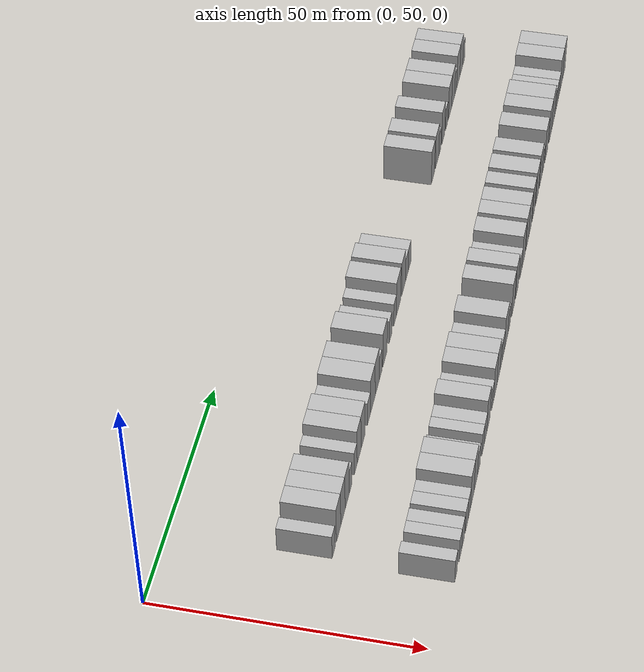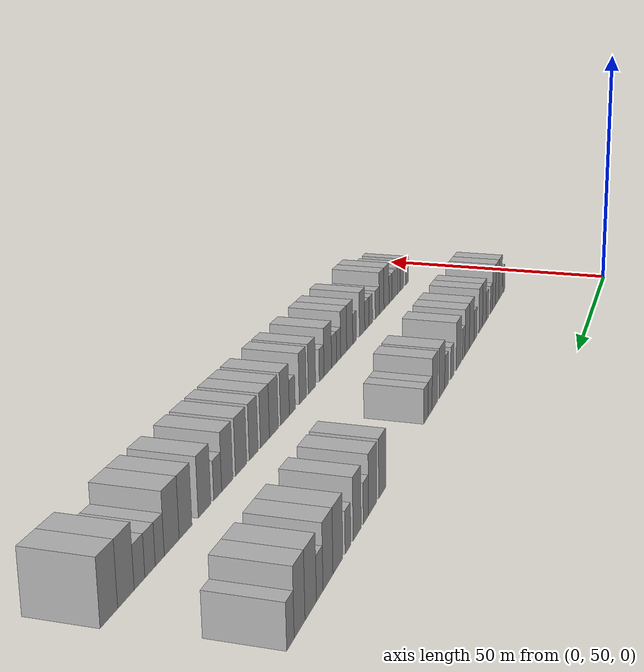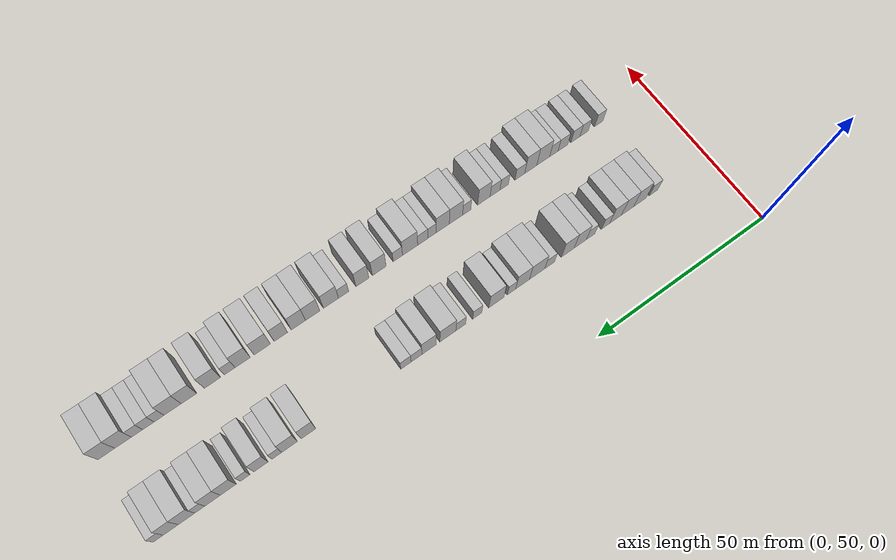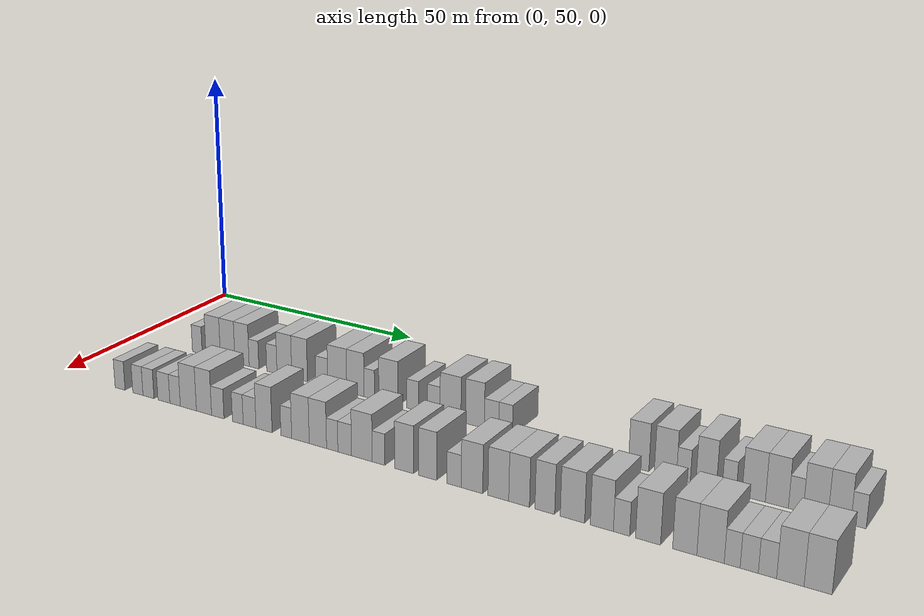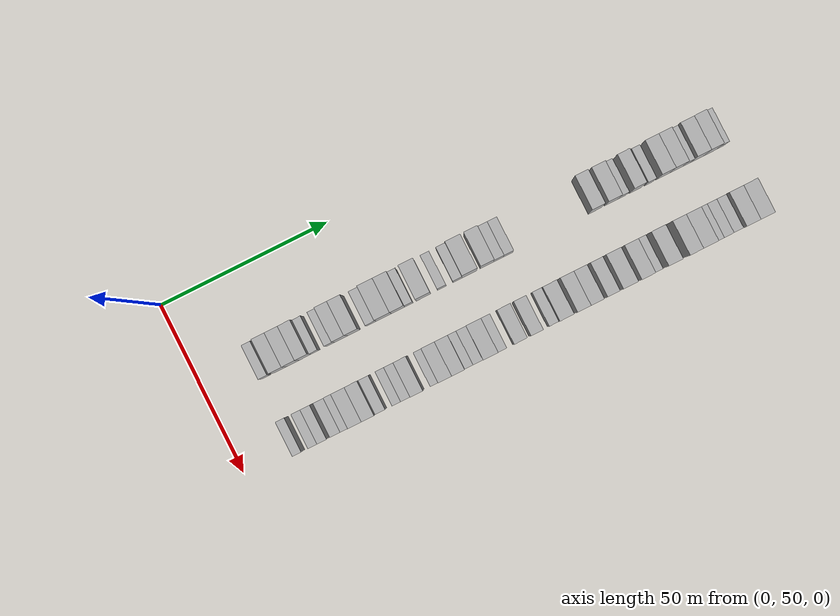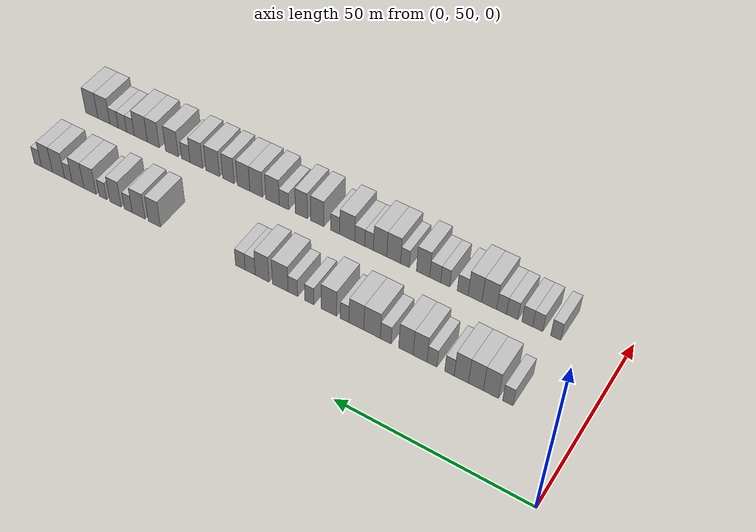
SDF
<sdf version="1.6">
 <world name="default">
  <model name="building_67">
   <static>1</static>
   <pose>25.0000 66.9653 0 0.000000 0.000000 0.000000</pose>
   <link name="link">
    <pose>0 0 3.00 0 0 0</pose>
    <collision name="collision"><geometry><box><size>10.0000 2.6101 6.0000</size></box></geometry></collision>
    <visual name="visual">
     <cast_shadows>0</cast_shadows>
     <geometry><box><size>10.0000 2.6101 6.0000</size></box></geometry>
     <material>
      <script>
       <uri>model://HANNAS_wall/materials/scripts</uri>
       <uri>model://HANNAS_wall/materials/textures</uri>
       <name>vrc/HANNAS_wall</name>
      </script>
     </material>
    </visual>
   </link>
  </model>
  <model name="building_68">
   <static>1</static>
   <pose>25.0000 71.1801 0 0.000000 0.000000 0.000000</pose>
   <link name="link">
    <pose>0 0 4.50 0 0 0</pose>
    <collision name="collision"><geometry><box><size>10.0000 3.8197 9.0000</size></box></geometry></collision>
    <visual name="visual">
     <cast_shadows>0</cast_shadows>
     <geometry><box><size>10.0000 3.8197 9.0000</size></box></geometry>
     <material>
      <script>
       <uri>model://HANNAS_wall/materials/scripts</uri>
       <uri>model://HANNAS_wall/materials/textures</uri>
       <name>vrc/HANNAS_wall</name>
      </script>
     </material>
    </visual>
   </link>
  </model>
  <model name="building_69">
   <static>1</static>
   <pose>25.0000 74.9788 0 0.000000 0.000000 0.000000</pose>
   <link name="link">
    <pose>0 0 4.50 0 0 0</pose>
    <collision name="collision"><geometry><box><size>10.0000 3.7777 9.0000</size></box></geometry></collision>
    <visual name="visual">
     <cast_shadows>0</cast_shadows>
     <geometry><box><size>10.0000 3.7777 9.0000</size></box></geometry>
     <material>
      <script>
       <uri>model://HANNAS_wall/materials/scripts</uri>
       <uri>model://HANNAS_wall/materials/textures</uri>
       <name>vrc/HANNAS_wall</name>
      </script>
     </material>
    </visual>
   </link>
  </model>
  <model name="building_70">
   <static>1</static>
   <pose>25.0000 78.6848 0 0.000000 0.000000 0.000000</pose>
   <link name="link">
    <pose>0 0 4.50 0 0 0</pose>
    <collision name="collision"><geometry><box><size>10.0000 3.6342 9.0000</size></box></geometry></collision>
    <visual name="visual">
     <cast_shadows>0</cast_shadows>
     <geometry><box><size>10.0000 3.6342 9.0000</size></box></geometry>
     <material>
      <script>
       <uri>model://HANNAS_wall/materials/scripts</uri>
       <uri>model://HANNAS_wall/materials/textures</uri>
       <name>vrc/HANNAS_wall</name>
      </script>
     </material>
    </visual>
   </link>
  </model>
  <model name="building_71">
   <static>1</static>
   <pose>25.0000 81.7325 0 0.000000 0.000000 0.000000</pose>
   <link name="link">
    <pose>0 0 3.00 0 0 0</pose>
    <collision name="collision"><geometry><box><size>10.0000 2.4613 6.0000</size></box></geometry></collision>
    <visual name="visual">
     <cast_shadows>0</cast_shadows>
     <geometry><box><size>10.0000 2.4613 6.0000</size></box></geometry>
     <material>
      <script>
       <uri>model://HANNAS_wall/materials/scripts</uri>
       <uri>model://HANNAS_wall/materials/textures</uri>
       <name>vrc/HANNAS_wall</name>
      </script>
     </material>
    </visual>
   </link>
  </model>
  <model name="building_72">
   <static>1</static>
   <pose>25.0000 86.2487 0 0.000000 0.000000 0.000000</pose>
   <link name="link">
    <pose>0 0 3.00 0 0 0</pose>
    <collision name="collision"><geometry><box><size>10.0000 2.5711 6.0000</size></box></geometry></collision>
    <visual name="visual">
     <cast_shadows>0</cast_shadows>
     <geometry><box><size>10.0000 2.5711 6.0000</size></box></geometry>
     <material>
      <script>
       <uri>model://HANNAS_wall/materials/scripts</uri>
       <uri>model://HANNAS_wall/materials/textures</uri>
       <name>vrc/HANNAS_wall</name>
      </script>
     </material>
    </visual>
   </link>
  </model>
  <model name="building_73">
   <static>1</static>
   <pose>25.0000 89.3699 0 0.000000 0.000000 0.000000</pose>
   <link name="link">
    <pose>0 0 4.50 0 0 0</pose>
    <collision name="collision"><geometry><box><size>10.0000 3.6713 9.0000</size></box></geometry></collision>
    <visual name="visual">
     <cast_shadows>0</cast_shadows>
     <geometry><box><size>10.0000 3.6713 9.0000</size></box></geometry>
     <material>
      <script>
       <uri>model://HANNAS_wall/materials/scripts</uri>
       <uri>model://HANNAS_wall/materials/textures</uri>
       <name>vrc/HANNAS_wall</name>
      </script>
     </material>
    </visual>
   </link>
  </model>
  <model name="building_74">
   <static>1</static>
   <pose>25.0000 93.1220 0 0.000000 0.000000 0.000000</pose>
   <link name="link">
    <pose>0 0 4.50 0 0 0</pose>
    <collision name="collision"><geometry><box><size>10.0000 3.8327 9.0000</size></box></geometry></collision>
    <visual name="visual">
     <cast_shadows>0</cast_shadows>
     <geometry><box><size>10.0000 3.8327 9.0000</size></box></geometry>
     <material>
      <script>
       <uri>model://HANNAS_wall/materials/scripts</uri>
       <uri>model://HANNAS_wall/materials/textures</uri>
       <name>vrc/HANNAS_wall</name>
      </script>
     </material>
    </visual>
   </link>
  </model>
  <model name="building_75">
   <static>1</static>
   <pose>25.0000 98.4886 0 0.000000 0.000000 0.000000</pose>
   <link name="link">
    <pose>0 0 3.00 0 0 0</pose>
    <collision name="collision"><geometry><box><size>10.0000 2.9004 6.0000</size></box></geometry></collision>
    <visual name="visual">
     <cast_shadows>0</cast_shadows>
     <geometry><box><size>10.0000 2.9004 6.0000</size></box></geometry>
     <material>
      <script>
       <uri>model://HANNAS_wall/materials/scripts</uri>
       <uri>model://HANNAS_wall/materials/textures</uri>
       <name>vrc/HANNAS_wall</name>
      </script>
     </material>
    </visual>
   </link>
  </model>
  <model name="building_76">
   <static>1</static>
   <pose>25.0000 102.1806 0 0.000000 0.000000 0.000000</pose>
   <link name="link">
    <pose>0 0 4.50 0 0 0</pose>
    <collision name="collision"><geometry><box><size>10.0000 4.4837 9.0000</size></box></geometry></collision>
    <visual name="visual">
     <cast_shadows>0</cast_shadows>
     <geometry><box><size>10.0000 4.4837 9.0000</size></box></geometry>
     <material>
      <script>
       <uri>model://HANNAS_wall/materials/scripts</uri>
       <uri>model://HANNAS_wall/materials/textures</uri>
       <name>vrc/HANNAS_wall</name>
      </script>
     </material>
    </visual>
   </link>
  </model>
  <model name="building_77">
   <static>1</static>
   <pose>25.0000 106.4409 0 0.000000 0.000000 0.000000</pose>
   <link name="link">
    <pose>0 0 4.50 0 0 0</pose>
    <collision name="collision"><geometry><box><size>10.0000 4.0369 9.0000</size></box></geometry></collision>
    <visual name="visual">
     <cast_shadows>0</cast_shadows>
     <geometry><box><size>10.0000 4.0369 9.0000</size></box></geometry>
     <material>
      <script>
       <uri>model://HANNAS_wall/materials/scripts</uri>
       <uri>model://HANNAS_wall/materials/textures</uri>
       <name>vrc/HANNAS_wall</name>
      </script>
     </material>
    </visual>
   </link>
  </model>
  <model name="building_78">
   <static>1</static>
   <pose>25.0000 109.6628 0 0.000000 0.000000 0.000000</pose>
   <link name="link">
    <pose>0 0 3.00 0 0 0</pose>
    <collision name="collision"><geometry><box><size>10.0000 2.4070 6.0000</size></box></geometry></collision>
    <visual name="visual">
     <cast_shadows>0</cast_shadows>
     <geometry><box><size>10.0000 2.4070 6.0000</size></box></geometry>
     <material>
      <script>
       <uri>model://HANNAS_wall/materials/scripts</uri>
       <uri>model://HANNAS_wall/materials/textures</uri>
       <name>vrc/HANNAS_wall</name>
      </script>
     </material>
    </visual>
   </link>
  </model>
  <model name="building_79">
   <static>1</static>
   <pose>25.0000 114.0289 0 0.000000 0.000000 0.000000</pose>
   <link name="link">
    <pose>0 0 4.50 0 0 0</pose>
    <collision name="collision"><geometry><box><size>10.0000 4.3251 9.0000</size></box></geometry></collision>
    <visual name="visual">
     <cast_shadows>0</cast_shadows>
     <geometry><box><size>10.0000 4.3251 9.0000</size></box></geometry>
     <material>
      <script>
       <uri>model://HANNAS_wall/materials/scripts</uri>
       <uri>model://HANNAS_wall/materials/textures</uri>
       <name>vrc/HANNAS_wall</name>
      </script>
     </material>
    </visual>
   </link>
  </model>
  <model name="building_80">
   <static>1</static>
   <pose>25.0000 119.4891 0 0.000000 0.000000 0.000000</pose>
   <link name="link">
    <pose>0 0 3.00 0 0 0</pose>
    <collision name="collision"><geometry><box><size>10.0000 2.5953 6.0000</size></box></geometry></collision>
    <visual name="visual">
     <cast_shadows>0</cast_shadows>
     <geometry><box><size>10.0000 2.5953 6.0000</size></box></geometry>
     <material>
      <script>
       <uri>model://HANNAS_wall/materials/scripts</uri>
       <uri>model://HANNAS_wall/materials/textures</uri>
       <name>vrc/HANNAS_wall</name>
      </script>
     </material>
    </visual>
   </link>
  </model>
  <model name="building_81">
   <static>1</static>
   <pose>25.0000 124.1591 0 0.000000 0.000000 0.000000</pose>
   <link name="link">
    <pose>0 0 3.00 0 0 0</pose>
    <collision name="collision"><geometry><box><size>10.0000 2.7448 6.0000</size></box></geometry></collision>
    <visual name="visual">
     <cast_shadows>0</cast_shadows>
     <geometry><box><size>10.0000 2.7448 6.0000</size></box></geometry>
     <material>
      <script>
       <uri>model://HANNAS_wall/materials/scripts</uri>
       <uri>model://HANNAS_wall/materials/textures</uri>
       <name>vrc/HANNAS_wall</name>
      </script>
     </material>
    </visual>
   </link>
  </model>
  <model name="building_82">
   <static>1</static>
   <pose>25.0000 127.7744 0 0.000000 0.000000 0.000000</pose>
   <link name="link">
    <pose>0 0 4.50 0 0 0</pose>
    <collision name="collision"><geometry><box><size>10.0000 4.4858 9.0000</size></box></geometry></collision>
    <visual name="visual">
     <cast_shadows>0</cast_shadows>
     <geometry><box><size>10.0000 4.4858 9.0000</size></box></geometry>
     <material>
      <script>
       <uri>model://HANNAS_wall/materials/scripts</uri>
       <uri>model://HANNAS_wall/materials/textures</uri>
       <name>vrc/HANNAS_wall</name>
      </script>
     </material>
    </visual>
   </link>
  </model>
  <model name="building_83">
   <static>1</static>
   <pose>25.0000 133.0102 0 0.000000 0.000000 0.000000</pose>
   <link name="link">
    <pose>0 0 4.50 0 0 0</pose>
    <collision name="collision"><geometry><box><size>10.0000 3.9858 9.0000</size></box></geometry></collision>
    <visual name="visual">
     <cast_shadows>0</cast_shadows>
     <geometry><box><size>10.0000 3.9858 9.0000</size></box></geometry>
     <material>
      <script>
       <uri>model://HANNAS_wall/materials/scripts</uri>
       <uri>model://HANNAS_wall/materials/textures</uri>
       <name>vrc/HANNAS_wall</name>
      </script>
     </material>
    </visual>
   </link>
  </model>
  <model name="building_84">
   <static>1</static>
   <pose>25.0000 136.4877 0 0.000000 0.000000 0.000000</pose>
   <link name="link">
    <pose>0 0 3.00 0 0 0</pose>
    <collision name="collision"><geometry><box><size>10.0000 2.9690 6.0000</size></box></geometry></collision>
    <visual name="visual">
     <cast_shadows>0</cast_shadows>
     <geometry><box><size>10.0000 2.9690 6.0000</size></box></geometry>
     <material>
      <script>
       <uri>model://HANNAS_wall/materials/scripts</uri>
       <uri>model://HANNAS_wall/materials/textures</uri>
       <name>vrc/HANNAS_wall</name>
      </script>
     </material>
    </visual>
   </link>
  </model>
  <model name="building_85">
   <static>1</static>
   <pose>25.0000 139.3937 0 0.000000 0.000000 0.000000</pose>
   <link name="link">
    <pose>0 0 3.00 0 0 0</pose>
    <collision name="collision"><geometry><box><size>10.0000 2.8429 6.0000</size></box></geometry></collision>
    <visual name="visual">
     <cast_shadows>0</cast_shadows>
     <geometry><box><size>10.0000 2.8429 6.0000</size></box></geometry>
     <material>
      <script>
       <uri>model://HANNAS_wall/materials/scripts</uri>
       <uri>model://HANNAS_wall/materials/textures</uri>
       <name>vrc/HANNAS_wall</name>
      </script>
     </material>
    </visual>
   </link>
  </model>
  <model name="building_86">
   <static>1</static>
   <pose>25.0000 165.5447 0 0.000000 0.000000 0.000000</pose>
   <link name="link">
    <pose>0 0 4.50 0 0 0</pose>
    <collision name="collision"><geometry><box><size>10.0000 3.8197 9.0000</size></box></geometry></collision>
    <visual name="visual">
     <cast_shadows>0</cast_shadows>
     <geometry><box><size>10.0000 3.8197 9.0000</size></box></geometry>
     <material>
      <script>
       <uri>model://HANNAS_wall/materials/scripts</uri>
       <uri>model://HANNAS_wall/materials/textures</uri>
       <name>vrc/HANNAS_wall</name>
      </script>
     </material>
    </visual>
   </link>
  </model>
  <model name="building_87">
   <static>1</static>
   <pose>25.0000 170.4842 0 0.000000 0.000000 0.000000</pose>
   <link name="link">
    <pose>0 0 4.50 0 0 0</pose>
    <collision name="collision"><geometry><box><size>10.0000 4.0594 9.0000</size></box></geometry></collision>
    <visual name="visual">
     <cast_shadows>0</cast_shadows>
     <geometry><box><size>10.0000 4.0594 9.0000</size></box></geometry>
     <material>
      <script>
       <uri>model://HANNAS_wall/materials/scripts</uri>
       <uri>model://HANNAS_wall/materials/textures</uri>
       <name>vrc/HANNAS_wall</name>
      </script>
     </material>
    </visual>
   </link>
  </model>
  <model name="building_88">
   <static>1</static>
   <pose>25.0000 173.7690 0 0.000000 0.000000 0.000000</pose>
   <link name="link">
    <pose>0 0 3.00 0 0 0</pose>
    <collision name="collision"><geometry><box><size>10.0000 2.5102 6.0000</size></box></geometry></collision>
    <visual name="visual">
     <cast_shadows>0</cast_shadows>
     <geometry><box><size>10.0000 2.5102 6.0000</size></box></geometry>
     <material>
      <script>
       <uri>model://HANNAS_wall/materials/scripts</uri>
       <uri>model://HANNAS_wall/materials/textures</uri>
       <name>vrc/HANNAS_wall</name>
      </script>
     </material>
    </visual>
   </link>
  </model>
  <model name="building_89">
   <static>1</static>
   <pose>25.0000 177.8482 0 0.000000 0.000000 0.000000</pose>
   <link name="link">
    <pose>0 0 4.50 0 0 0</pose>
    <collision name="collision"><geometry><box><size>10.0000 3.6481 9.0000</size></box></geometry></collision>
    <visual name="visual">
     <cast_shadows>0</cast_shadows>
     <geometry><box><size>10.0000 3.6481 9.0000</size></box></geometry>
     <material>
      <script>
       <uri>model://HANNAS_wall/materials/scripts</uri>
       <uri>model://HANNAS_wall/materials/textures</uri>
       <name>vrc/HANNAS_wall</name>
      </script>
     </material>
    </visual>
   </link>
  </model>
  <model name="building_90">
   <static>1</static>
   <pose>25.0000 181.9054 0 0.000000 0.000000 0.000000</pose>
   <link name="link">
    <pose>0 0 3.00 0 0 0</pose>
    <collision name="collision"><geometry><box><size>10.0000 2.4664 6.0000</size></box></geometry></collision>
    <visual name="visual">
     <cast_shadows>0</cast_shadows>
     <geometry><box><size>10.0000 2.4664 6.0000</size></box></geometry>
     <material>
      <script>
       <uri>model://HANNAS_wall/materials/scripts</uri>
       <uri>model://HANNAS_wall/materials/textures</uri>
       <name>vrc/HANNAS_wall</name>
      </script>
     </material>
    </visual>
   </link>
  </model>
  <model name="building_91">
   <static>1</static>
   <pose>25.0000 186.1505 0 0.000000 0.000000 0.000000</pose>
   <link name="link">
    <pose>0 0 4.50 0 0 0</pose>
    <collision name="collision"><geometry><box><size>10.0000 4.0237 9.0000</size></box></geometry></collision>
    <visual name="visual">
     <cast_shadows>0</cast_shadows>
     <geometry><box><size>10.0000 4.0237 9.0000</size></box></geometry>
     <material>
      <script>
       <uri>model://HANNAS_wall/materials/scripts</uri>
       <uri>model://HANNAS_wall/materials/textures</uri>
       <name>vrc/HANNAS_wall</name>
      </script>
     </material>
    </visual>
   </link>
  </model>
  <model name="building_92">
   <static>1</static>
   <pose>25.0000 190.1076 0 0.000000 0.000000 0.000000</pose>
   <link name="link">
    <pose>0 0 4.50 0 0 0</pose>
    <collision name="collision"><geometry><box><size>10.0000 3.8905 9.0000</size></box></geometry></collision>
    <visual name="visual">
     <cast_shadows>0</cast_shadows>
     <geometry><box><size>10.0000 3.8905 9.0000</size></box></geometry>
     <material>
      <script>
       <uri>model://HANNAS_wall/materials/scripts</uri>
       <uri>model://HANNAS_wall/materials/textures</uri>
       <name>vrc/HANNAS_wall</name>
      </script>
     </material>
    </visual>
   </link>
  </model>
  <model name="building_93">
   <static>1</static>
   <pose>25.0000 193.2844 0 0.000000 0.000000 0.000000</pose>
   <link name="link">
    <pose>0 0 3.00 0 0 0</pose>
    <collision name="collision"><geometry><box><size>10.0000 2.4630 6.0000</size></box></geometry></collision>
    <visual name="visual">
     <cast_shadows>0</cast_shadows>
     <geometry><box><size>10.0000 2.4630 6.0000</size></box></geometry>
     <material>
      <script>
       <uri>model://HANNAS_wall/materials/scripts</uri>
       <uri>model://HANNAS_wall/materials/textures</uri>
       <name>vrc/HANNAS_wall</name>
      </script>
     </material>
    </visual>
   </link>
  </model>
  <model name="building_94">
   <static>1</static>
   <pose>25.0000 196.5520 0 0.000000 0.000000 0.000000</pose>
   <link name="link">
    <pose>0 0 4.50 0 0 0</pose>
    <collision name="collision"><geometry><box><size>10.0000 4.0721 9.0000</size></box></geometry></collision>
    <visual name="visual">
     <cast_shadows>0</cast_shadows>
     <geometry><box><size>10.0000 4.0721 9.0000</size></box></geometry>
     <material>
      <script>
       <uri>model://HANNAS_wall/materials/scripts</uri>
       <uri>model://HANNAS_wall/materials/textures</uri>
       <name>vrc/HANNAS_wall</name>
      </script>
     </material>
    </visual>
   </link>
  </model>
  <model name="building_95">
   <static>1</static>
   <pose>25.0000 200.4323 0 0.000000 0.000000 0.000000</pose>
   <link name="link">
    <pose>0 0 4.50 0 0 0</pose>
    <collision name="collision"><geometry><box><size>10.0000 3.6886 9.0000</size></box></geometry></collision>
    <visual name="visual">
     <cast_shadows>0</cast_shadows>
     <geometry><box><size>10.0000 3.6886 9.0000</size></box></geometry>
     <material>
      <script>
       <uri>model://HANNAS_wall/materials/scripts</uri>
       <uri>model://HANNAS_wall/materials/textures</uri>
       <name>vrc/HANNAS_wall</name>
      </script>
     </material>
    </visual>
   </link>
  </model>
  <model name="building_96">
   <static>1</static>
   <pose>25.0000 203.5031 0 0.000000 0.000000 0.000000</pose>
   <link name="link">
    <pose>0 0 3.00 0 0 0</pose>
    <collision name="collision"><geometry><box><size>10.0000 2.4531 6.0000</size></box></geometry></collision>
    <visual name="visual">
     <cast_shadows>0</cast_shadows>
     <geometry><box><size>10.0000 2.4531 6.0000</size></box></geometry>
     <material>
      <script>
       <uri>model://HANNAS_wall/materials/scripts</uri>
       <uri>model://HANNAS_wall/materials/textures</uri>
       <name>vrc/HANNAS_wall</name>
      </script>
     </material>
    </visual>
   </link>
  </model>
  <model name="building_163">
   <static>1</static>
   <pose>47.0000 66.0049 0 0.000000 0.000000 0.000000</pose>
   <link name="link">
    <pose>0 0 3.00 0 0 0</pose>
    <collision name="collision"><geometry><box><size>10.0000 2.5942 6.0000</size></box></geometry></collision>
    <visual name="visual">
     <cast_shadows>0</cast_shadows>
     <geometry><box><size>10.0000 2.5942 6.0000</size></box></geometry>
     <material>
      <script>
       <uri>model://HANNAS_wall/materials/scripts</uri>
       <uri>model://HANNAS_wall/materials/textures</uri>
       <name>vrc/HANNAS_wall</name>
      </script>
     </material>
    </visual>
   </link>
  </model>
  <model name="building_164">
   <static>1</static>
   <pose>47.0000 70.6118 0 0.000000 0.000000 0.000000</pose>
   <link name="link">
    <pose>0 0 3.00 0 0 0</pose>
    <collision name="collision"><geometry><box><size>10.0000 2.6198 6.0000</size></box></geometry></collision>
    <visual name="visual">
     <cast_shadows>0</cast_shadows>
     <geometry><box><size>10.0000 2.6198 6.0000</size></box></geometry>
     <material>
      <script>
       <uri>model://HANNAS_wall/materials/scripts</uri>
       <uri>model://HANNAS_wall/materials/textures</uri>
       <name>vrc/HANNAS_wall</name>
      </script>
     </material>
    </visual>
   </link>
  </model>
  <model name="building_165">
   <static>1</static>
   <pose>47.0000 73.3209 0 0.000000 0.000000 0.000000</pose>
   <link name="link">
    <pose>0 0 3.00 0 0 0</pose>
    <collision name="collision"><geometry><box><size>10.0000 2.7983 6.0000</size></box></geometry></collision>
    <visual name="visual">
     <cast_shadows>0</cast_shadows>
     <geometry><box><size>10.0000 2.7983 6.0000</size></box></geometry>
     <material>
      <script>
       <uri>model://HANNAS_wall/materials/scripts</uri>
       <uri>model://HANNAS_wall/materials/textures</uri>
       <name>vrc/HANNAS_wall</name>
      </script>
     </material>
    </visual>
   </link>
  </model>
  <model name="building_166">
   <static>1</static>
   <pose>47.0000 77.2178 0 0.000000 0.000000 0.000000</pose>
   <link name="link">
    <pose>0 0 3.00 0 0 0</pose>
    <collision name="collision"><geometry><box><size>10.0000 2.9956 6.0000</size></box></geometry></collision>
    <visual name="visual">
     <cast_shadows>0</cast_shadows>
     <geometry><box><size>10.0000 2.9956 6.0000</size></box></geometry>
     <material>
      <script>
       <uri>model://HANNAS_wall/materials/scripts</uri>
       <uri>model://HANNAS_wall/materials/textures</uri>
       <name>vrc/HANNAS_wall</name>
      </script>
     </material>
    </visual>
   </link>
  </model>
  <model name="building_167">
   <static>1</static>
   <pose>47.0000 80.0102 0 0.000000 0.000000 0.000000</pose>
   <link name="link">
    <pose>0 0 3.00 0 0 0</pose>
    <collision name="collision"><geometry><box><size>10.0000 2.5893 6.0000</size></box></geometry></collision>
    <visual name="visual">
     <cast_shadows>0</cast_shadows>
     <geometry><box><size>10.0000 2.5893 6.0000</size></box></geometry>
     <material>
      <script>
       <uri>model://HANNAS_wall/materials/scripts</uri>
       <uri>model://HANNAS_wall/materials/textures</uri>
       <name>vrc/HANNAS_wall</name>
      </script>
     </material>
    </visual>
   </link>
  </model>
  <model name="building_168">
   <static>1</static>
   <pose>47.0000 83.2765 0 0.000000 0.000000 0.000000</pose>
   <link name="link">
    <pose>0 0 4.50 0 0 0</pose>
    <collision name="collision"><geometry><box><size>10.0000 3.9433 9.0000</size></box></geometry></collision>
    <visual name="visual">
     <cast_shadows>0</cast_shadows>
     <geometry><box><size>10.0000 3.9433 9.0000</size></box></geometry>
     <material>
      <script>
       <uri>model://HANNAS_wall/materials/scripts</uri>
       <uri>model://HANNAS_wall/materials/textures</uri>
       <name>vrc/HANNAS_wall</name>
      </script>
     </material>
    </visual>
   </link>
  </model>
  <model name="building_169">
   <static>1</static>
   <pose>47.0000 87.0861 0 0.000000 0.000000 0.000000</pose>
   <link name="link">
    <pose>0 0 4.50 0 0 0</pose>
    <collision name="collision"><geometry><box><size>10.0000 3.6759 9.0000</size></box></geometry></collision>
    <visual name="visual">
     <cast_shadows>0</cast_shadows>
     <geometry><box><size>10.0000 3.6759 9.0000</size></box></geometry>
     <material>
      <script>
       <uri>model://HANNAS_wall/materials/scripts</uri>
       <uri>model://HANNAS_wall/materials/textures</uri>
       <name>vrc/HANNAS_wall</name>
      </script>
     </material>
    </visual>
   </link>
  </model>
  <model name="building_170">
   <static>1</static>
   <pose>47.0000 90.4068 0 0.000000 0.000000 0.000000</pose>
   <link name="link">
    <pose>0 0 3.00 0 0 0</pose>
    <collision name="collision"><geometry><box><size>10.0000 2.9654 6.0000</size></box></geometry></collision>
    <visual name="visual">
     <cast_shadows>0</cast_shadows>
     <geometry><box><size>10.0000 2.9654 6.0000</size></box></geometry>
     <material>
      <script>
       <uri>model://HANNAS_wall/materials/scripts</uri>
       <uri>model://HANNAS_wall/materials/textures</uri>
       <name>vrc/HANNAS_wall</name>
      </script>
     </material>
    </visual>
   </link>
  </model>
  <model name="building_171">
   <static>1</static>
   <pose>47.0000 95.1521 0 0.000000 0.000000 0.000000</pose>
   <link name="link">
    <pose>0 0 3.00 0 0 0</pose>
    <collision name="collision"><geometry><box><size>10.0000 2.5252 6.0000</size></box></geometry></collision>
    <visual name="visual">
     <cast_shadows>0</cast_shadows>
     <geometry><box><size>10.0000 2.5252 6.0000</size></box></geometry>
     <material>
      <script>
       <uri>model://HANNAS_wall/materials/scripts</uri>
       <uri>model://HANNAS_wall/materials/textures</uri>
       <name>vrc/HANNAS_wall</name>
      </script>
     </material>
    </visual>
   </link>
  </model>
  <model name="building_172">
   <static>1</static>
   <pose>47.0000 97.9004 0 0.000000 0.000000 0.000000</pose>
   <link name="link">
    <pose>0 0 3.00 0 0 0</pose>
    <collision name="collision"><geometry><box><size>10.0000 2.9713 6.0000</size></box></geometry></collision>
    <visual name="visual">
     <cast_shadows>0</cast_shadows>
     <geometry><box><size>10.0000 2.9713 6.0000</size></box></geometry>
     <material>
      <script>
       <uri>model://HANNAS_wall/materials/scripts</uri>
       <uri>model://HANNAS_wall/materials/textures</uri>
       <name>vrc/HANNAS_wall</name>
      </script>
     </material>
    </visual>
   </link>
  </model>
  <model name="building_173">
   <static>1</static>
   <pose>47.0000 101.2339 0 0.000000 0.000000 0.000000</pose>
   <link name="link">
    <pose>0 0 4.50 0 0 0</pose>
    <collision name="collision"><geometry><box><size>10.0000 3.6959 9.0000</size></box></geometry></collision>
    <visual name="visual">
     <cast_shadows>0</cast_shadows>
     <geometry><box><size>10.0000 3.6959 9.0000</size></box></geometry>
     <material>
      <script>
       <uri>model://HANNAS_wall/materials/scripts</uri>
       <uri>model://HANNAS_wall/materials/textures</uri>
       <name>vrc/HANNAS_wall</name>
      </script>
     </material>
    </visual>
   </link>
  </model>
  <model name="building_174">
   <static>1</static>
   <pose>47.0000 106.2950 0 0.000000 0.000000 0.000000</pose>
   <link name="link">
    <pose>0 0 3.00 0 0 0</pose>
    <collision name="collision"><geometry><box><size>10.0000 2.4263 6.0000</size></box></geometry></collision>
    <visual name="visual">
     <cast_shadows>0</cast_shadows>
     <geometry><box><size>10.0000 2.4263 6.0000</size></box></geometry>
     <material>
      <script>
       <uri>model://HANNAS_wall/materials/scripts</uri>
       <uri>model://HANNAS_wall/materials/textures</uri>
       <name>vrc/HANNAS_wall</name>
      </script>
     </material>
    </visual>
   </link>
  </model>
  <model name="building_175">
   <static>1</static>
   <pose>47.0000 109.4608 0 0.000000 0.000000 0.000000</pose>
   <link name="link">
    <pose>0 0 4.50 0 0 0</pose>
    <collision name="collision"><geometry><box><size>10.0000 3.9053 9.0000</size></box></geometry></collision>
    <visual name="visual">
     <cast_shadows>0</cast_shadows>
     <geometry><box><size>10.0000 3.9053 9.0000</size></box></geometry>
     <material>
      <script>
       <uri>model://HANNAS_wall/materials/scripts</uri>
       <uri>model://HANNAS_wall/materials/textures</uri>
       <name>vrc/HANNAS_wall</name>
      </script>
     </material>
    </visual>
   </link>
  </model>
  <model name="building_176">
   <static>1</static>
   <pose>47.0000 113.3125 0 0.000000 0.000000 0.000000</pose>
   <link name="link">
    <pose>0 0 4.50 0 0 0</pose>
    <collision name="collision"><geometry><box><size>10.0000 3.7982 9.0000</size></box></geometry></collision>
    <visual name="visual">
     <cast_shadows>0</cast_shadows>
     <geometry><box><size>10.0000 3.7982 9.0000</size></box></geometry>
     <material>
      <script>
       <uri>model://HANNAS_wall/materials/scripts</uri>
       <uri>model://HANNAS_wall/materials/textures</uri>
       <name>vrc/HANNAS_wall</name>
      </script>
     </material>
    </visual>
   </link>
  </model>
  <model name="building_177">
   <static>1</static>
   <pose>47.0000 116.4357 0 0.000000 0.000000 0.000000</pose>
   <link name="link">
    <pose>0 0 3.00 0 0 0</pose>
    <collision name="collision"><geometry><box><size>10.0000 2.4482 6.0000</size></box></geometry></collision>
    <visual name="visual">
     <cast_shadows>0</cast_shadows>
     <geometry><box><size>10.0000 2.4482 6.0000</size></box></geometry>
     <material>
      <script>
       <uri>model://HANNAS_wall/materials/scripts</uri>
       <uri>model://HANNAS_wall/materials/textures</uri>
       <name>vrc/HANNAS_wall</name>
      </script>
     </material>
    </visual>
   </link>
  </model>
  <model name="building_178">
   <static>1</static>
   <pose>47.0000 119.1243 0 0.000000 0.000000 0.000000</pose>
   <link name="link">
    <pose>0 0 3.00 0 0 0</pose>
    <collision name="collision"><geometry><box><size>10.0000 2.9291 6.0000</size></box></geometry></collision>
    <visual name="visual">
     <cast_shadows>0</cast_shadows>
     <geometry><box><size>10.0000 2.9291 6.0000</size></box></geometry>
     <material>
      <script>
       <uri>model://HANNAS_wall/materials/scripts</uri>
       <uri>model://HANNAS_wall/materials/textures</uri>
       <name>vrc/HANNAS_wall</name>
      </script>
     </material>
    </visual>
   </link>
  </model>
  <model name="building_179">
   <static>1</static>
   <pose>47.0000 122.7681 0 0.000000 0.000000 0.000000</pose>
   <link name="link">
    <pose>0 0 4.50 0 0 0</pose>
    <collision name="collision"><geometry><box><size>10.0000 4.3585 9.0000</size></box></geometry></collision>
    <visual name="visual">
     <cast_shadows>0</cast_shadows>
     <geometry><box><size>10.0000 4.3585 9.0000</size></box></geometry>
     <material>
      <script>
       <uri>model://HANNAS_wall/materials/scripts</uri>
       <uri>model://HANNAS_wall/materials/textures</uri>
       <name>vrc/HANNAS_wall</name>
      </script>
     </material>
    </visual>
   </link>
  </model>
  <model name="building_180">
   <static>1</static>
   <pose>47.0000 126.2729 0 0.000000 0.000000 0.000000</pose>
   <link name="link">
    <pose>0 0 3.00 0 0 0</pose>
    <collision name="collision"><geometry><box><size>10.0000 2.6511 6.0000</size></box></geometry></collision>
    <visual name="visual">
     <cast_shadows>0</cast_shadows>
     <geometry><box><size>10.0000 2.6511 6.0000</size></box></geometry>
     <material>
      <script>
       <uri>model://HANNAS_wall/materials/scripts</uri>
       <uri>model://HANNAS_wall/materials/textures</uri>
       <name>vrc/HANNAS_wall</name>
      </script>
     </material>
    </visual>
   </link>
  </model>
  <model name="building_181">
   <static>1</static>
   <pose>47.0000 131.5364 0 0.000000 0.000000 0.000000</pose>
   <link name="link">
    <pose>0 0 4.50 0 0 0</pose>
    <collision name="collision"><geometry><box><size>10.0000 3.8757 9.0000</size></box></geometry></collision>
    <visual name="visual">
     <cast_shadows>0</cast_shadows>
     <geometry><box><size>10.0000 3.8757 9.0000</size></box></geometry>
     <material>
      <script>
       <uri>model://HANNAS_wall/materials/scripts</uri>
       <uri>model://HANNAS_wall/materials/textures</uri>
       <name>vrc/HANNAS_wall</name>
      </script>
     </material>
    </visual>
   </link>
  </model>
  <model name="building_182">
   <static>1</static>
   <pose>47.0000 136.2796 0 0.000000 0.000000 0.000000</pose>
   <link name="link">
    <pose>0 0 4.50 0 0 0</pose>
    <collision name="collision"><geometry><box><size>10.0000 3.6107 9.0000</size></box></geometry></collision>
    <visual name="visual">
     <cast_shadows>0</cast_shadows>
     <geometry><box><size>10.0000 3.6107 9.0000</size></box></geometry>
     <material>
      <script>
       <uri>model://HANNAS_wall/materials/scripts</uri>
       <uri>model://HANNAS_wall/materials/textures</uri>
       <name>vrc/HANNAS_wall</name>
      </script>
     </material>
    </visual>
   </link>
  </model>
  <model name="building_183">
   <static>1</static>
   <pose>47.0000 141.5053 0 0.000000 0.000000 0.000000</pose>
   <link name="link">
    <pose>0 0 3.00 0 0 0</pose>
    <collision name="collision"><geometry><box><size>10.0000 2.8407 6.0000</size></box></geometry></collision>
    <visual name="visual">
     <cast_shadows>0</cast_shadows>
     <geometry><box><size>10.0000 2.8407 6.0000</size></box></geometry>
     <material>
      <script>
       <uri>model://HANNAS_wall/materials/scripts</uri>
       <uri>model://HANNAS_wall/materials/textures</uri>
       <name>vrc/HANNAS_wall</name>
      </script>
     </material>
    </visual>
   </link>
  </model>
  <model name="building_184">
   <static>1</static>
   <pose>47.0000 145.0018 0 0.000000 0.000000 0.000000</pose>
   <link name="link">
    <pose>0 0 4.50 0 0 0</pose>
    <collision name="collision"><geometry><box><size>10.0000 4.1524 9.0000</size></box></geometry></collision>
    <visual name="visual">
     <cast_shadows>0</cast_shadows>
     <geometry><box><size>10.0000 4.1524 9.0000</size></box></geometry>
     <material>
      <script>
       <uri>model://HANNAS_wall/materials/scripts</uri>
       <uri>model://HANNAS_wall/materials/textures</uri>
       <name>vrc/HANNAS_wall</name>
      </script>
     </material>
    </visual>
   </link>
  </model>
  <model name="building_185">
   <static>1</static>
   <pose>47.0000 150.0416 0 0.000000 0.000000 0.000000</pose>
   <link name="link">
    <pose>0 0 4.50 0 0 0</pose>
    <collision name="collision"><geometry><box><size>10.0000 3.9272 9.0000</size></box></geometry></collision>
    <visual name="visual">
     <cast_shadows>0</cast_shadows>
     <geometry><box><size>10.0000 3.9272 9.0000</size></box></geometry>
     <material>
      <script>
       <uri>model://HANNAS_wall/materials/scripts</uri>
       <uri>model://HANNAS_wall/materials/textures</uri>
       <name>vrc/HANNAS_wall</name>
      </script>
     </material>
    </visual>
   </link>
  </model>
  <model name="building_186">
   <static>1</static>
   <pose>47.0000 153.9369 0 0.000000 0.000000 0.000000</pose>
   <link name="link">
    <pose>0 0 4.50 0 0 0</pose>
    <collision name="collision"><geometry><box><size>10.0000 3.8634 9.0000</size></box></geometry></collision>
    <visual name="visual">
     <cast_shadows>0</cast_shadows>
     <geometry><box><size>10.0000 3.8634 9.0000</size></box></geometry>
     <material>
      <script>
       <uri>model://HANNAS_wall/materials/scripts</uri>
       <uri>model://HANNAS_wall/materials/textures</uri>
       <name>vrc/HANNAS_wall</name>
      </script>
     </material>
    </visual>
   </link>
  </model>
  <model name="building_187">
   <static>1</static>
   <pose>47.0000 158.6719 0 0.000000 0.000000 0.000000</pose>
   <link name="link">
    <pose>0 0 4.50 0 0 0</pose>
    <collision name="collision"><geometry><box><size>10.0000 3.6064 9.0000</size></box></geometry></collision>
    <visual name="visual">
     <cast_shadows>0</cast_shadows>
     <geometry><box><size>10.0000 3.6064 9.0000</size></box></geometry>
     <material>
      <script>
       <uri>model://HANNAS_wall/materials/scripts</uri>
       <uri>model://HANNAS_wall/materials/textures</uri>
       <name>vrc/HANNAS_wall</name>
      </script>
     </material>
    </visual>
   </link>
  </model>
  <model name="building_188">
   <static>1</static>
   <pose>47.0000 163.6561 0 0.000000 0.000000 0.000000</pose>
   <link name="link">
    <pose>0 0 4.50 0 0 0</pose>
    <collision name="collision"><geometry><box><size>10.0000 4.3619 9.0000</size></box></geometry></collision>
    <visual name="visual">
     <cast_shadows>0</cast_shadows>
     <geometry><box><size>10.0000 4.3619 9.0000</size></box></geometry>
     <material>
      <script>
       <uri>model://HANNAS_wall/materials/scripts</uri>
       <uri>model://HANNAS_wall/materials/textures</uri>
       <name>vrc/HANNAS_wall</name>
      </script>
     </material>
    </visual>
   </link>
  </model>
  <model name="building_189">
   <static>1</static>
   <pose>47.0000 168.8526 0 0.000000 0.000000 0.000000</pose>
   <link name="link">
    <pose>0 0 4.50 0 0 0</pose>
    <collision name="collision"><geometry><box><size>10.0000 4.0311 9.0000</size></box></geometry></collision>
    <visual name="visual">
     <cast_shadows>0</cast_shadows>
     <geometry><box><size>10.0000 4.0311 9.0000</size></box></geometry>
     <material>
      <script>
       <uri>model://HANNAS_wall/materials/scripts</uri>
       <uri>model://HANNAS_wall/materials/textures</uri>
       <name>vrc/HANNAS_wall</name>
      </script>
     </material>
    </visual>
   </link>
  </model>
  <model name="building_190">
   <static>1</static>
   <pose>47.0000 172.2740 0 0.000000 0.000000 0.000000</pose>
   <link name="link">
    <pose>0 0 3.00 0 0 0</pose>
    <collision name="collision"><geometry><box><size>10.0000 2.8117 6.0000</size></box></geometry></collision>
    <visual name="visual">
     <cast_shadows>0</cast_shadows>
     <geometry><box><size>10.0000 2.8117 6.0000</size></box></geometry>
     <material>
      <script>
       <uri>model://HANNAS_wall/materials/scripts</uri>
       <uri>model://HANNAS_wall/materials/textures</uri>
       <name>vrc/HANNAS_wall</name>
      </script>
     </material>
    </visual>
   </link>
  </model>
  <model name="building_191">
   <static>1</static>
   <pose>47.0000 176.7902 0 0.000000 0.000000 0.000000</pose>
   <link name="link">
    <pose>0 0 4.50 0 0 0</pose>
    <collision name="collision"><geometry><box><size>10.0000 4.2207 9.0000</size></box></geometry></collision>
    <visual name="visual">
     <cast_shadows>0</cast_shadows>
     <geometry><box><size>10.0000 4.2207 9.0000</size></box></geometry>
     <material>
      <script>
       <uri>model://HANNAS_wall/materials/scripts</uri>
       <uri>model://HANNAS_wall/materials/textures</uri>
       <name>vrc/HANNAS_wall</name>
      </script>
     </material>
    </visual>
   </link>
  </model>
  <model name="building_192">
   <static>1</static>
   <pose>47.0000 182.8888 0 0.000000 0.000000 0.000000</pose>
   <link name="link">
    <pose>0 0 4.50 0 0 0</pose>
    <collision name="collision"><geometry><box><size>10.0000 3.9764 9.0000</size></box></geometry></collision>
    <visual name="visual">
     <cast_shadows>0</cast_shadows>
     <geometry><box><size>10.0000 3.9764 9.0000</size></box></geometry>
     <material>
      <script>
       <uri>model://HANNAS_wall/materials/scripts</uri>
       <uri>model://HANNAS_wall/materials/textures</uri>
       <name>vrc/HANNAS_wall</name>
      </script>
     </material>
    </visual>
   </link>
  </model>
  <model name="building_193">
   <static>1</static>
   <pose>47.0000 187.0845 0 0.000000 0.000000 0.000000</pose>
   <link name="link">
    <pose>0 0 4.50 0 0 0</pose>
    <collision name="collision"><geometry><box><size>10.0000 4.4151 9.0000</size></box></geometry></collision>
    <visual name="visual">
     <cast_shadows>0</cast_shadows>
     <geometry><box><size>10.0000 4.4151 9.0000</size></box></geometry>
     <material>
      <script>
       <uri>model://HANNAS_wall/materials/scripts</uri>
       <uri>model://HANNAS_wall/materials/textures</uri>
       <name>vrc/HANNAS_wall</name>
      </script>
     </material>
    </visual>
   </link>
  </model>
  <model name="building_194">
   <static>1</static>
   <pose>47.0000 190.5575 0 0.000000 0.000000 0.000000</pose>
   <link name="link">
    <pose>0 0 3.00 0 0 0</pose>
    <collision name="collision"><geometry><box><size>10.0000 2.5310 6.0000</size></box></geometry></collision>
    <visual name="visual">
     <cast_shadows>0</cast_shadows>
     <geometry><box><size>10.0000 2.5310 6.0000</size></box></geometry>
     <material>
      <script>
       <uri>model://HANNAS_wall/materials/scripts</uri>
       <uri>model://HANNAS_wall/materials/textures</uri>
       <name>vrc/HANNAS_wall</name>
      </script>
     </material>
    </visual>
   </link>
  </model>
  <model name="building_195">
   <static>1</static>
   <pose>47.0000 193.2480 0 0.000000 0.000000 0.000000</pose>
   <link name="link">
    <pose>0 0 3.00 0 0 0</pose>
    <collision name="collision"><geometry><box><size>10.0000 2.8499 6.0000</size></box></geometry></collision>
    <visual name="visual">
     <cast_shadows>0</cast_shadows>
     <geometry><box><size>10.0000 2.8499 6.0000</size></box></geometry>
     <material>
      <script>
       <uri>model://HANNAS_wall/materials/scripts</uri>
       <uri>model://HANNAS_wall/materials/textures</uri>
       <name>vrc/HANNAS_wall</name>
      </script>
     </material>
    </visual>
   </link>
  </model>
  <model name="building_196">
   <static>1</static>
   <pose>47.0000 196.0881 0 0.000000 0.000000 0.000000</pose>
   <link name="link">
    <pose>0 0 3.00 0 0 0</pose>
    <collision name="collision"><geometry><box><size>10.0000 2.8304 6.0000</size></box></geometry></collision>
    <visual name="visual">
     <cast_shadows>0</cast_shadows>
     <geometry><box><size>10.0000 2.8304 6.0000</size></box></geometry>
     <material>
      <script>
       <uri>model://HANNAS_wall/materials/scripts</uri>
       <uri>model://HANNAS_wall/materials/textures</uri>
       <name>vrc/HANNAS_wall</name>
      </script>
     </material>
    </visual>
   </link>
  </model>
  <model name="building_197">
   <static>1</static>
   <pose>47.0000 199.5883 0 0.000000 0.000000 0.000000</pose>
   <link name="link">
    <pose>0 0 4.50 0 0 0</pose>
    <collision name="collision"><geometry><box><size>10.0000 4.1699 9.0000</size></box></geometry></collision>
    <visual name="visual">
     <cast_shadows>0</cast_shadows>
     <geometry><box><size>10.0000 4.1699 9.0000</size></box></geometry>
     <material>
      <script>
       <uri>model://HANNAS_wall/materials/scripts</uri>
       <uri>model://HANNAS_wall/materials/textures</uri>
       <name>vrc/HANNAS_wall</name>
      </script>
     </material>
    </visual>
   </link>
  </model>
  <model name="building_198">
   <static>1</static>
   <pose>47.0000 203.7740 0 0.000000 0.000000 0.000000</pose>
   <link name="link">
    <pose>0 0 4.50 0 0 0</pose>
    <collision name="collision"><geometry><box><size>10.0000 4.2017 9.0000</size></box></geometry></collision>
    <visual name="visual">
     <cast_shadows>0</cast_shadows>
     <geometry><box><size>10.0000 4.2017 9.0000</size></box></geometry>
     <material>
      <script>
       <uri>model://HANNAS_wall/materials/scripts</uri>
       <uri>model://HANNAS_wall/materials/textures</uri>
       <name>vrc/HANNAS_wall</name>
      </script>
     </material>
    </visual>
   </link>
  </model>
 </world>
</sdf>
